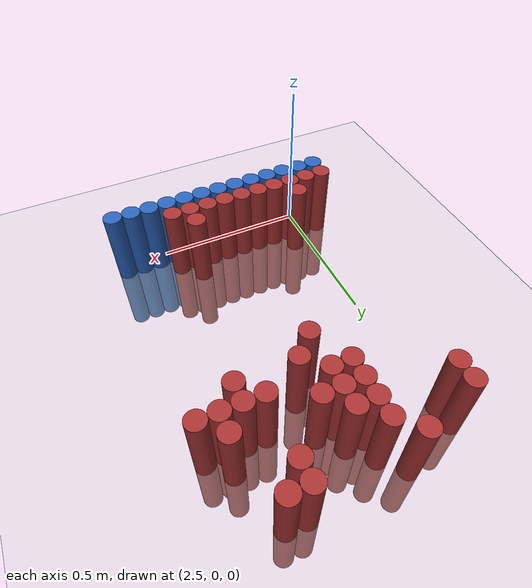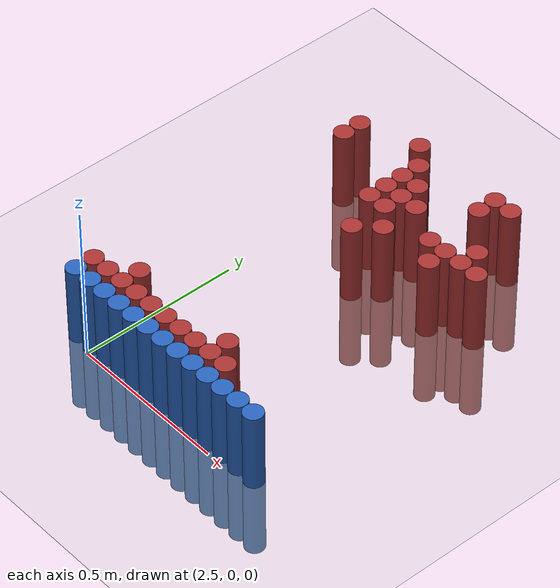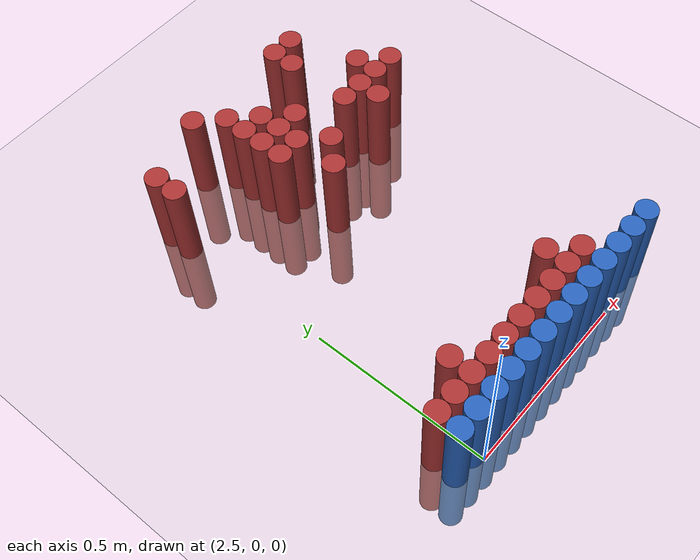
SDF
<sdf version="1.6">
 <world name="default">
  <model name="ground_plane">
   <static>1</static>
   <link name="link">
    <collision name="collision">
     <geometry><plane><normal>0 0 1</normal><size>100 100</size></plane></geometry>
     <surface><friction><ode><mu>100</mu><mu2>50</mu2></ode></friction></surface>
    </collision>
    <visual name="visual">
     <cast_shadows>0</cast_shadows>
     <geometry><plane><normal>0 0 1</normal><size>100 100</size></plane></geometry>
     <material>
      <script><uri>file://media/materials/scripts/gazebo.material</uri><name>Gazebo/Grey</name></script>
     </material>
    </visual>
   </link>
  </model>
  <model name="unit_cylinder_213">
   <static>1</static>
   <pose>2.670000 1.050000 0.000000 0.000000 0.000000 0.000000</pose>
   <link name="link">
    <inertial>
     <mass>1</mass>
     <inertia><ixx>0.145833</ixx><ixy>0</ixy><ixz>0</ixz><iyy>0.145833</iyy><iyz>0</iyz><izz>0.125</izz></inertia>
    </inertial>
    <collision name="collision">
     <geometry><cylinder><radius>0.030000</radius><length>0.5</length></cylinder></geometry>
    </collision>
    <visual name="visual">
     <geometry><cylinder><radius>0.030000</radius><length>0.5</length></cylinder></geometry>
     <material>
      <ambient>0.648000 0.192000 0.192000 1</ambient>
      <diffuse>0.648000 0.192000 0.192000 1</diffuse>
     </material>
     <material>
      <script><name>Gazebo/Grey</name><uri>file://media/materials/scripts/gazebo.material</uri></script>
     </material>
    </visual>
   </link>
  </model>
  <model name="unit_cylinder_214">
   <static>1</static>
   <pose>2.970000 1.050000 0.000000 0.000000 0.000000 0.000000</pose>
   <link name="link">
    <inertial>
     <mass>1</mass>
     <inertia><ixx>0.145833</ixx><ixy>0</ixy><ixz>0</ixz><iyy>0.145833</iyy><iyz>0</iyz><izz>0.125</izz></inertia>
    </inertial>
    <collision name="collision">
     <geometry><cylinder><radius>0.030000</radius><length>0.5</length></cylinder></geometry>
    </collision>
    <visual name="visual">
     <geometry><cylinder><radius>0.030000</radius><length>0.5</length></cylinder></geometry>
     <material>
      <ambient>0.648000 0.192000 0.192000 1</ambient>
      <diffuse>0.648000 0.192000 0.192000 1</diffuse>
     </material>
     <material>
      <script><name>Gazebo/Grey</name><uri>file://media/materials/scripts/gazebo.material</uri></script>
     </material>
    </visual>
   </link>
  </model>
  <model name="unit_cylinder_215">
   <static>1</static>
   <pose>3.030000 1.050000 0.000000 0.000000 0.000000 0.000000</pose>
   <link name="link">
    <inertial>
     <mass>1</mass>
     <inertia><ixx>0.145833</ixx><ixy>0</ixy><ixz>0</ixz><iyy>0.145833</iyy><iyz>0</iyz><izz>0.125</izz></inertia>
    </inertial>
    <collision name="collision">
     <geometry><cylinder><radius>0.030000</radius><length>0.5</length></cylinder></geometry>
    </collision>
    <visual name="visual">
     <geometry><cylinder><radius>0.030000</radius><length>0.5</length></cylinder></geometry>
     <material>
      <ambient>0.648000 0.192000 0.192000 1</ambient>
      <diffuse>0.648000 0.192000 0.192000 1</diffuse>
     </material>
     <material>
      <script><name>Gazebo/Grey</name><uri>file://media/materials/scripts/gazebo.material</uri></script>
     </material>
    </visual>
   </link>
  </model>
  <model name="unit_cylinder_224">
   <static>1</static>
   <pose>2.490000 0.990000 0.000000 0.000000 0.000000 0.000000</pose>
   <link name="link">
    <inertial>
     <mass>1</mass>
     <inertia><ixx>0.145833</ixx><ixy>0</ixy><ixz>0</ixz><iyy>0.145833</iyy><iyz>0</iyz><izz>0.125</izz></inertia>
    </inertial>
    <collision name="collision">
     <geometry><cylinder><radius>0.030000</radius><length>0.5</length></cylinder></geometry>
    </collision>
    <visual name="visual">
     <geometry><cylinder><radius>0.030000</radius><length>0.5</length></cylinder></geometry>
     <material>
      <ambient>0.648000 0.192000 0.192000 1</ambient>
      <diffuse>0.648000 0.192000 0.192000 1</diffuse>
     </material>
     <material>
      <script><name>Gazebo/Grey</name><uri>file://media/materials/scripts/gazebo.material</uri></script>
     </material>
    </visual>
   </link>
  </model>
  <model name="unit_cylinder_225">
   <static>1</static>
   <pose>2.730000 0.990000 0.000000 0.000000 0.000000 0.000000</pose>
   <link name="link">
    <inertial>
     <mass>1</mass>
     <inertia><ixx>0.145833</ixx><ixy>0</ixy><ixz>0</ixz><iyy>0.145833</iyy><iyz>0</iyz><izz>0.125</izz></inertia>
    </inertial>
    <collision name="collision">
     <geometry><cylinder><radius>0.030000</radius><length>0.5</length></cylinder></geometry>
    </collision>
    <visual name="visual">
     <geometry><cylinder><radius>0.030000</radius><length>0.5</length></cylinder></geometry>
     <material>
      <ambient>0.648000 0.192000 0.192000 1</ambient>
      <diffuse>0.648000 0.192000 0.192000 1</diffuse>
     </material>
     <material>
      <script><name>Gazebo/Grey</name><uri>file://media/materials/scripts/gazebo.material</uri></script>
     </material>
    </visual>
   </link>
  </model>
  <model name="unit_cylinder_226">
   <static>1</static>
   <pose>2.970000 0.990000 0.000000 0.000000 0.000000 0.000000</pose>
   <link name="link">
    <inertial>
     <mass>1</mass>
     <inertia><ixx>0.145833</ixx><ixy>0</ixy><ixz>0</ixz><iyy>0.145833</iyy><iyz>0</iyz><izz>0.125</izz></inertia>
    </inertial>
    <collision name="collision">
     <geometry><cylinder><radius>0.030000</radius><length>0.5</length></cylinder></geometry>
    </collision>
    <visual name="visual">
     <geometry><cylinder><radius>0.030000</radius><length>0.5</length></cylinder></geometry>
     <material>
      <ambient>0.648000 0.192000 0.192000 1</ambient>
      <diffuse>0.648000 0.192000 0.192000 1</diffuse>
     </material>
     <material>
      <script><name>Gazebo/Grey</name><uri>file://media/materials/scripts/gazebo.material</uri></script>
     </material>
    </visual>
   </link>
  </model>
  <model name="unit_cylinder_232">
   <static>1</static>
   <pose>2.490000 0.930000 0.000000 0.000000 0.000000 0.000000</pose>
   <link name="link">
    <inertial>
     <mass>1</mass>
     <inertia><ixx>0.145833</ixx><ixy>0</ixy><ixz>0</ixz><iyy>0.145833</iyy><iyz>0</iyz><izz>0.125</izz></inertia>
    </inertial>
    <collision name="collision">
     <geometry><cylinder><radius>0.030000</radius><length>0.5</length></cylinder></geometry>
    </collision>
    <visual name="visual">
     <geometry><cylinder><radius>0.030000</radius><length>0.5</length></cylinder></geometry>
     <material>
      <ambient>0.648000 0.192000 0.192000 1</ambient>
      <diffuse>0.648000 0.192000 0.192000 1</diffuse>
     </material>
     <material>
      <script><name>Gazebo/Grey</name><uri>file://media/materials/scripts/gazebo.material</uri></script>
     </material>
    </visual>
   </link>
  </model>
  <model name="unit_cylinder_233">
   <static>1</static>
   <pose>2.730000 0.930000 0.000000 0.000000 0.000000 0.000000</pose>
   <link name="link">
    <inertial>
     <mass>1</mass>
     <inertia><ixx>0.145833</ixx><ixy>0</ixy><ixz>0</ixz><iyy>0.145833</iyy><iyz>0</iyz><izz>0.125</izz></inertia>
    </inertial>
    <collision name="collision">
     <geometry><cylinder><radius>0.030000</radius><length>0.5</length></cylinder></geometry>
    </collision>
    <visual name="visual">
     <geometry><cylinder><radius>0.030000</radius><length>0.5</length></cylinder></geometry>
     <material>
      <ambient>0.648000 0.192000 0.192000 1</ambient>
      <diffuse>0.648000 0.192000 0.192000 1</diffuse>
     </material>
     <material>
      <script><name>Gazebo/Grey</name><uri>file://media/materials/scripts/gazebo.material</uri></script>
     </material>
    </visual>
   </link>
  </model>
  <model name="unit_cylinder_234">
   <static>1</static>
   <pose>2.790000 0.930000 0.000000 0.000000 0.000000 0.000000</pose>
   <link name="link">
    <inertial>
     <mass>1</mass>
     <inertia><ixx>0.145833</ixx><ixy>0</ixy><ixz>0</ixz><iyy>0.145833</iyy><iyz>0</iyz><izz>0.125</izz></inertia>
    </inertial>
    <collision name="collision">
     <geometry><cylinder><radius>0.030000</radius><length>0.5</length></cylinder></geometry>
    </collision>
    <visual name="visual">
     <geometry><cylinder><radius>0.030000</radius><length>0.5</length></cylinder></geometry>
     <material>
      <ambient>0.648000 0.192000 0.192000 1</ambient>
      <diffuse>0.648000 0.192000 0.192000 1</diffuse>
     </material>
     <material>
      <script><name>Gazebo/Grey</name><uri>file://media/materials/scripts/gazebo.material</uri></script>
     </material>
    </visual>
   </link>
  </model>
  <model name="unit_cylinder_238">
   <static>1</static>
   <pose>2.730000 0.870000 0.000000 0.000000 0.000000 0.000000</pose>
   <link name="link">
    <inertial>
     <mass>1</mass>
     <inertia><ixx>0.145833</ixx><ixy>0</ixy><ixz>0</ixz><iyy>0.145833</iyy><iyz>0</iyz><izz>0.125</izz></inertia>
    </inertial>
    <collision name="collision">
     <geometry><cylinder><radius>0.030000</radius><length>0.5</length></cylinder></geometry>
    </collision>
    <visual name="visual">
     <geometry><cylinder><radius>0.030000</radius><length>0.5</length></cylinder></geometry>
     <material>
      <ambient>0.648000 0.192000 0.192000 1</ambient>
      <diffuse>0.648000 0.192000 0.192000 1</diffuse>
     </material>
     <material>
      <script><name>Gazebo/Grey</name><uri>file://media/materials/scripts/gazebo.material</uri></script>
     </material>
    </visual>
   </link>
  </model>
  <model name="unit_cylinder_239">
   <static>1</static>
   <pose>2.790000 0.870000 0.000000 0.000000 0.000000 0.000000</pose>
   <link name="link">
    <inertial>
     <mass>1</mass>
     <inertia><ixx>0.145833</ixx><ixy>0</ixy><ixz>0</ixz><iyy>0.145833</iyy><iyz>0</iyz><izz>0.125</izz></inertia>
    </inertial>
    <collision name="collision">
     <geometry><cylinder><radius>0.030000</radius><length>0.5</length></cylinder></geometry>
    </collision>
    <visual name="visual">
     <geometry><cylinder><radius>0.030000</radius><length>0.5</length></cylinder></geometry>
     <material>
      <ambient>0.648000 0.192000 0.192000 1</ambient>
      <diffuse>0.648000 0.192000 0.192000 1</diffuse>
     </material>
     <material>
      <script><name>Gazebo/Grey</name><uri>file://media/materials/scripts/gazebo.material</uri></script>
     </material>
    </visual>
   </link>
  </model>
  <model name="unit_cylinder_240">
   <static>1</static>
   <pose>2.850000 0.870000 0.000000 0.000000 0.000000 0.000000</pose>
   <link name="link">
    <inertial>
     <mass>1</mass>
     <inertia><ixx>0.145833</ixx><ixy>0</ixy><ixz>0</ixz><iyy>0.145833</iyy><iyz>0</iyz><izz>0.125</izz></inertia>
    </inertial>
    <collision name="collision">
     <geometry><cylinder><radius>0.030000</radius><length>0.5</length></cylinder></geometry>
    </collision>
    <visual name="visual">
     <geometry><cylinder><radius>0.030000</radius><length>0.5</length></cylinder></geometry>
     <material>
      <ambient>0.648000 0.192000 0.192000 1</ambient>
      <diffuse>0.648000 0.192000 0.192000 1</diffuse>
     </material>
     <material>
      <script><name>Gazebo/Grey</name><uri>file://media/materials/scripts/gazebo.material</uri></script>
     </material>
    </visual>
   </link>
  </model>
  <model name="unit_cylinder_241">
   <static>1</static>
   <pose>3.090000 0.870000 0.000000 0.000000 0.000000 0.000000</pose>
   <link name="link">
    <inertial>
     <mass>1</mass>
     <inertia><ixx>0.145833</ixx><ixy>0</ixy><ixz>0</ixz><iyy>0.145833</iyy><iyz>0</iyz><izz>0.125</izz></inertia>
    </inertial>
    <collision name="collision">
     <geometry><cylinder><radius>0.030000</radius><length>0.5</length></cylinder></geometry>
    </collision>
    <visual name="visual">
     <geometry><cylinder><radius>0.030000</radius><length>0.5</length></cylinder></geometry>
     <material>
      <ambient>0.648000 0.192000 0.192000 1</ambient>
      <diffuse>0.648000 0.192000 0.192000 1</diffuse>
     </material>
     <material>
      <script><name>Gazebo/Grey</name><uri>file://media/materials/scripts/gazebo.material</uri></script>
     </material>
    </visual>
   </link>
  </model>
  <model name="unit_cylinder_244">
   <static>1</static>
   <pose>2.730000 0.810000 0.000000 0.000000 0.000000 0.000000</pose>
   <link name="link">
    <inertial>
     <mass>1</mass>
     <inertia><ixx>0.145833</ixx><ixy>0</ixy><ixz>0</ixz><iyy>0.145833</iyy><iyz>0</iyz><izz>0.125</izz></inertia>
    </inertial>
    <collision name="collision">
     <geometry><cylinder><radius>0.030000</radius><length>0.5</length></cylinder></geometry>
    </collision>
    <visual name="visual">
     <geometry><cylinder><radius>0.030000</radius><length>0.5</length></cylinder></geometry>
     <material>
      <ambient>0.648000 0.192000 0.192000 1</ambient>
      <diffuse>0.648000 0.192000 0.192000 1</diffuse>
     </material>
     <material>
      <script><name>Gazebo/Grey</name><uri>file://media/materials/scripts/gazebo.material</uri></script>
     </material>
    </visual>
   </link>
  </model>
  <model name="unit_cylinder_245">
   <static>1</static>
   <pose>2.790000 0.810000 0.000000 0.000000 0.000000 0.000000</pose>
   <link name="link">
    <inertial>
     <mass>1</mass>
     <inertia><ixx>0.145833</ixx><ixy>0</ixy><ixz>0</ixz><iyy>0.145833</iyy><iyz>0</iyz><izz>0.125</izz></inertia>
    </inertial>
    <collision name="collision">
     <geometry><cylinder><radius>0.030000</radius><length>0.5</length></cylinder></geometry>
    </collision>
    <visual name="visual">
     <geometry><cylinder><radius>0.030000</radius><length>0.5</length></cylinder></geometry>
     <material>
      <ambient>0.648000 0.192000 0.192000 1</ambient>
      <diffuse>0.648000 0.192000 0.192000 1</diffuse>
     </material>
     <material>
      <script><name>Gazebo/Grey</name><uri>file://media/materials/scripts/gazebo.material</uri></script>
     </material>
    </visual>
   </link>
  </model>
  <model name="unit_cylinder_246">
   <static>1</static>
   <pose>2.970000 0.810000 0.000000 0.000000 0.000000 0.000000</pose>
   <link name="link">
    <inertial>
     <mass>1</mass>
     <inertia><ixx>0.145833</ixx><ixy>0</ixy><ixz>0</ixz><iyy>0.145833</iyy><iyz>0</iyz><izz>0.125</izz></inertia>
    </inertial>
    <collision name="collision">
     <geometry><cylinder><radius>0.030000</radius><length>0.5</length></cylinder></geometry>
    </collision>
    <visual name="visual">
     <geometry><cylinder><radius>0.030000</radius><length>0.5</length></cylinder></geometry>
     <material>
      <ambient>0.648000 0.192000 0.192000 1</ambient>
      <diffuse>0.648000 0.192000 0.192000 1</diffuse>
     </material>
     <material>
      <script><name>Gazebo/Grey</name><uri>file://media/materials/scripts/gazebo.material</uri></script>
     </material>
    </visual>
   </link>
  </model>
  <model name="unit_cylinder_247">
   <static>1</static>
   <pose>3.030000 0.810000 0.000000 0.000000 0.000000 0.000000</pose>
   <link name="link">
    <inertial>
     <mass>1</mass>
     <inertia><ixx>0.145833</ixx><ixy>0</ixy><ixz>0</ixz><iyy>0.145833</iyy><iyz>0</iyz><izz>0.125</izz></inertia>
    </inertial>
    <collision name="collision">
     <geometry><cylinder><radius>0.030000</radius><length>0.5</length></cylinder></geometry>
    </collision>
    <visual name="visual">
     <geometry><cylinder><radius>0.030000</radius><length>0.5</length></cylinder></geometry>
     <material>
      <ambient>0.648000 0.192000 0.192000 1</ambient>
      <diffuse>0.648000 0.192000 0.192000 1</diffuse>
     </material>
     <material>
      <script><name>Gazebo/Grey</name><uri>file://media/materials/scripts/gazebo.material</uri></script>
     </material>
    </visual>
   </link>
  </model>
  <model name="unit_cylinder_248">
   <static>1</static>
   <pose>3.090000 0.810000 0.000000 0.000000 0.000000 0.000000</pose>
   <link name="link">
    <inertial>
     <mass>1</mass>
     <inertia><ixx>0.145833</ixx><ixy>0</ixy><ixz>0</ixz><iyy>0.145833</iyy><iyz>0</iyz><izz>0.125</izz></inertia>
    </inertial>
    <collision name="collision">
     <geometry><cylinder><radius>0.030000</radius><length>0.5</length></cylinder></geometry>
    </collision>
    <visual name="visual">
     <geometry><cylinder><radius>0.030000</radius><length>0.5</length></cylinder></geometry>
     <material>
      <ambient>0.648000 0.192000 0.192000 1</ambient>
      <diffuse>0.648000 0.192000 0.192000 1</diffuse>
     </material>
     <material>
      <script><name>Gazebo/Grey</name><uri>file://media/materials/scripts/gazebo.material</uri></script>
     </material>
    </visual>
   </link>
  </model>
  <model name="unit_cylinder_249">
   <static>1</static>
   <pose>3.150000 0.810000 0.000000 0.000000 0.000000 0.000000</pose>
   <link name="link">
    <inertial>
     <mass>1</mass>
     <inertia><ixx>0.145833</ixx><ixy>0</ixy><ixz>0</ixz><iyy>0.145833</iyy><iyz>0</iyz><izz>0.125</izz></inertia>
    </inertial>
    <collision name="collision">
     <geometry><cylinder><radius>0.030000</radius><length>0.5</length></cylinder></geometry>
    </collision>
    <visual name="visual">
     <geometry><cylinder><radius>0.030000</radius><length>0.5</length></cylinder></geometry>
     <material>
      <ambient>0.648000 0.192000 0.192000 1</ambient>
      <diffuse>0.648000 0.192000 0.192000 1</diffuse>
     </material>
     <material>
      <script><name>Gazebo/Grey</name><uri>file://media/materials/scripts/gazebo.material</uri></script>
     </material>
    </visual>
   </link>
  </model>
  <model name="unit_cylinder_250">
   <static>1</static>
   <pose>2.850000 0.750000 0.000000 0.000000 0.000000 0.000000</pose>
   <link name="link">
    <inertial>
     <mass>1</mass>
     <inertia><ixx>0.145833</ixx><ixy>0</ixy><ixz>0</ixz><iyy>0.145833</iyy><iyz>0</iyz><izz>0.125</izz></inertia>
    </inertial>
    <collision name="collision">
     <geometry><cylinder><radius>0.030000</radius><length>0.5</length></cylinder></geometry>
    </collision>
    <visual name="visual">
     <geometry><cylinder><radius>0.030000</radius><length>0.5</length></cylinder></geometry>
     <material>
      <ambient>0.648000 0.192000 0.192000 1</ambient>
      <diffuse>0.648000 0.192000 0.192000 1</diffuse>
     </material>
     <material>
      <script><name>Gazebo/Grey</name><uri>file://media/materials/scripts/gazebo.material</uri></script>
     </material>
    </visual>
   </link>
  </model>
  <model name="unit_cylinder_251">
   <static>1</static>
   <pose>3.030000 0.750000 0.000000 0.000000 0.000000 0.000000</pose>
   <link name="link">
    <inertial>
     <mass>1</mass>
     <inertia><ixx>0.145833</ixx><ixy>0</ixy><ixz>0</ixz><iyy>0.145833</iyy><iyz>0</iyz><izz>0.125</izz></inertia>
    </inertial>
    <collision name="collision">
     <geometry><cylinder><radius>0.030000</radius><length>0.5</length></cylinder></geometry>
    </collision>
    <visual name="visual">
     <geometry><cylinder><radius>0.030000</radius><length>0.5</length></cylinder></geometry>
     <material>
      <ambient>0.648000 0.192000 0.192000 1</ambient>
      <diffuse>0.648000 0.192000 0.192000 1</diffuse>
     </material>
     <material>
      <script><name>Gazebo/Grey</name><uri>file://media/materials/scripts/gazebo.material</uri></script>
     </material>
    </visual>
   </link>
  </model>
  <model name="unit_cylinder_252">
   <static>1</static>
   <pose>2.790000 0.690000 0.000000 0.000000 0.000000 0.000000</pose>
   <link name="link">
    <inertial>
     <mass>1</mass>
     <inertia><ixx>0.145833</ixx><ixy>0</ixy><ixz>0</ixz><iyy>0.145833</iyy><iyz>0</iyz><izz>0.125</izz></inertia>
    </inertial>
    <collision name="collision">
     <geometry><cylinder><radius>0.030000</radius><length>0.5</length></cylinder></geometry>
    </collision>
    <visual name="visual">
     <geometry><cylinder><radius>0.030000</radius><length>0.5</length></cylinder></geometry>
     <material>
      <ambient>0.648000 0.192000 0.192000 1</ambient>
      <diffuse>0.648000 0.192000 0.192000 1</diffuse>
     </material>
     <material>
      <script><name>Gazebo/Grey</name><uri>file://media/materials/scripts/gazebo.material</uri></script>
     </material>
    </visual>
   </link>
  </model>
  <model name="unit_cylinder_280">
   <static>1</static>
   <pose>2.550000 0.150000 0.000000 0.000000 0.000000 0.000000</pose>
   <link name="link">
    <inertial>
     <mass>1</mass>
     <inertia><ixx>0.145833</ixx><ixy>0</ixy><ixz>0</ixz><iyy>0.145833</iyy><iyz>0</iyz><izz>0.125</izz></inertia>
    </inertial>
    <collision name="collision">
     <geometry><cylinder><radius>0.030000</radius><length>0.5</length></cylinder></geometry>
    </collision>
    <visual name="visual">
     <geometry><cylinder><radius>0.030000</radius><length>0.5</length></cylinder></geometry>
     <material>
      <ambient>0.648000 0.192000 0.192000 1</ambient>
      <diffuse>0.648000 0.192000 0.192000 1</diffuse>
     </material>
     <material>
      <script><name>Gazebo/Grey</name><uri>file://media/materials/scripts/gazebo.material</uri></script>
     </material>
    </visual>
   </link>
  </model>
  <model name="unit_cylinder_281">
   <static>1</static>
   <pose>2.910000 0.150000 0.000000 0.000000 0.000000 0.000000</pose>
   <link name="link">
    <inertial>
     <mass>1</mass>
     <inertia><ixx>0.145833</ixx><ixy>0</ixy><ixz>0</ixz><iyy>0.145833</iyy><iyz>0</iyz><izz>0.125</izz></inertia>
    </inertial>
    <collision name="collision">
     <geometry><cylinder><radius>0.030000</radius><length>0.5</length></cylinder></geometry>
    </collision>
    <visual name="visual">
     <geometry><cylinder><radius>0.030000</radius><length>0.5</length></cylinder></geometry>
     <material>
      <ambient>0.648000 0.192000 0.192000 1</ambient>
      <diffuse>0.648000 0.192000 0.192000 1</diffuse>
     </material>
     <material>
      <script><name>Gazebo/Grey</name><uri>file://media/materials/scripts/gazebo.material</uri></script>
     </material>
    </visual>
   </link>
  </model>
  <model name="unit_cylinder_286">
   <static>1</static>
   <pose>2.430000 0.090000 0.000000 0.000000 0.000000 0.000000</pose>
   <link name="link">
    <inertial>
     <mass>1</mass>
     <inertia><ixx>0.145833</ixx><ixy>0</ixy><ixz>0</ixz><iyy>0.145833</iyy><iyz>0</iyz><izz>0.125</izz></inertia>
    </inertial>
    <collision name="collision">
     <geometry><cylinder><radius>0.030000</radius><length>0.5</length></cylinder></geometry>
    </collision>
    <visual name="visual">
     <geometry><cylinder><radius>0.030000</radius><length>0.5</length></cylinder></geometry>
     <material>
      <ambient>0.648000 0.192000 0.192000 1</ambient>
      <diffuse>0.648000 0.192000 0.192000 1</diffuse>
     </material>
     <material>
      <script><name>Gazebo/Grey</name><uri>file://media/materials/scripts/gazebo.material</uri></script>
     </material>
    </visual>
   </link>
  </model>
  <model name="unit_cylinder_287">
   <static>1</static>
   <pose>2.490000 0.090000 0.000000 0.000000 0.000000 0.000000</pose>
   <link name="link">
    <inertial>
     <mass>1</mass>
     <inertia><ixx>0.145833</ixx><ixy>0</ixy><ixz>0</ixz><iyy>0.145833</iyy><iyz>0</iyz><izz>0.125</izz></inertia>
    </inertial>
    <collision name="collision">
     <geometry><cylinder><radius>0.030000</radius><length>0.5</length></cylinder></geometry>
    </collision>
    <visual name="visual">
     <geometry><cylinder><radius>0.030000</radius><length>0.5</length></cylinder></geometry>
     <material>
      <ambient>0.648000 0.192000 0.192000 1</ambient>
      <diffuse>0.648000 0.192000 0.192000 1</diffuse>
     </material>
     <material>
      <script><name>Gazebo/Grey</name><uri>file://media/materials/scripts/gazebo.material</uri></script>
     </material>
    </visual>
   </link>
  </model>
  <model name="unit_cylinder_288">
   <static>1</static>
   <pose>2.550000 0.090000 0.000000 0.000000 0.000000 0.000000</pose>
   <link name="link">
    <inertial>
     <mass>1</mass>
     <inertia><ixx>0.145833</ixx><ixy>0</ixy><ixz>0</ixz><iyy>0.145833</iyy><iyz>0</iyz><izz>0.125</izz></inertia>
    </inertial>
    <collision name="collision">
     <geometry><cylinder><radius>0.030000</radius><length>0.5</length></cylinder></geometry>
    </collision>
    <visual name="visual">
     <geometry><cylinder><radius>0.030000</radius><length>0.5</length></cylinder></geometry>
     <material>
      <ambient>0.648000 0.192000 0.192000 1</ambient>
      <diffuse>0.648000 0.192000 0.192000 1</diffuse>
     </material>
     <material>
      <script><name>Gazebo/Grey</name><uri>file://media/materials/scripts/gazebo.material</uri></script>
     </material>
    </visual>
   </link>
  </model>
  <model name="unit_cylinder_289">
   <static>1</static>
   <pose>2.610000 0.090000 0.000000 0.000000 0.000000 0.000000</pose>
   <link name="link">
    <inertial>
     <mass>1</mass>
     <inertia><ixx>0.145833</ixx><ixy>0</ixy><ixz>0</ixz><iyy>0.145833</iyy><iyz>0</iyz><izz>0.125</izz></inertia>
    </inertial>
    <collision name="collision">
     <geometry><cylinder><radius>0.030000</radius><length>0.5</length></cylinder></geometry>
    </collision>
    <visual name="visual">
     <geometry><cylinder><radius>0.030000</radius><length>0.5</length></cylinder></geometry>
     <material>
      <ambient>0.648000 0.192000 0.192000 1</ambient>
      <diffuse>0.648000 0.192000 0.192000 1</diffuse>
     </material>
     <material>
      <script><name>Gazebo/Grey</name><uri>file://media/materials/scripts/gazebo.material</uri></script>
     </material>
    </visual>
   </link>
  </model>
  <model name="unit_cylinder_290">
   <static>1</static>
   <pose>2.670000 0.090000 0.000000 0.000000 0.000000 0.000000</pose>
   <link name="link">
    <inertial>
     <mass>1</mass>
     <inertia><ixx>0.145833</ixx><ixy>0</ixy><ixz>0</ixz><iyy>0.145833</iyy><iyz>0</iyz><izz>0.125</izz></inertia>
    </inertial>
    <collision name="collision">
     <geometry><cylinder><radius>0.030000</radius><length>0.5</length></cylinder></geometry>
    </collision>
    <visual name="visual">
     <geometry><cylinder><radius>0.030000</radius><length>0.5</length></cylinder></geometry>
     <material>
      <ambient>0.648000 0.192000 0.192000 1</ambient>
      <diffuse>0.648000 0.192000 0.192000 1</diffuse>
     </material>
     <material>
      <script><name>Gazebo/Grey</name><uri>file://media/materials/scripts/gazebo.material</uri></script>
     </material>
    </visual>
   </link>
  </model>
  <model name="unit_cylinder_291">
   <static>1</static>
   <pose>2.730000 0.090000 0.000000 0.000000 0.000000 0.000000</pose>
   <link name="link">
    <inertial>
     <mass>1</mass>
     <inertia><ixx>0.145833</ixx><ixy>0</ixy><ixz>0</ixz><iyy>0.145833</iyy><iyz>0</iyz><izz>0.125</izz></inertia>
    </inertial>
    <collision name="collision">
     <geometry><cylinder><radius>0.030000</radius><length>0.5</length></cylinder></geometry>
    </collision>
    <visual name="visual">
     <geometry><cylinder><radius>0.030000</radius><length>0.5</length></cylinder></geometry>
     <material>
      <ambient>0.648000 0.192000 0.192000 1</ambient>
      <diffuse>0.648000 0.192000 0.192000 1</diffuse>
     </material>
     <material>
      <script><name>Gazebo/Grey</name><uri>file://media/materials/scripts/gazebo.material</uri></script>
     </material>
    </visual>
   </link>
  </model>
  <model name="unit_cylinder_292">
   <static>1</static>
   <pose>2.790000 0.090000 0.000000 0.000000 0.000000 0.000000</pose>
   <link name="link">
    <inertial>
     <mass>1</mass>
     <inertia><ixx>0.145833</ixx><ixy>0</ixy><ixz>0</ixz><iyy>0.145833</iyy><iyz>0</iyz><izz>0.125</izz></inertia>
    </inertial>
    <collision name="collision">
     <geometry><cylinder><radius>0.030000</radius><length>0.5</length></cylinder></geometry>
    </collision>
    <visual name="visual">
     <geometry><cylinder><radius>0.030000</radius><length>0.5</length></cylinder></geometry>
     <material>
      <ambient>0.648000 0.192000 0.192000 1</ambient>
      <diffuse>0.648000 0.192000 0.192000 1</diffuse>
     </material>
     <material>
      <script><name>Gazebo/Grey</name><uri>file://media/materials/scripts/gazebo.material</uri></script>
     </material>
    </visual>
   </link>
  </model>
  <model name="unit_cylinder_293">
   <static>1</static>
   <pose>2.850000 0.090000 0.000000 0.000000 0.000000 0.000000</pose>
   <link name="link">
    <inertial>
     <mass>1</mass>
     <inertia><ixx>0.145833</ixx><ixy>0</ixy><ixz>0</ixz><iyy>0.145833</iyy><iyz>0</iyz><izz>0.125</izz></inertia>
    </inertial>
    <collision name="collision">
     <geometry><cylinder><radius>0.030000</radius><length>0.5</length></cylinder></geometry>
    </collision>
    <visual name="visual">
     <geometry><cylinder><radius>0.030000</radius><length>0.5</length></cylinder></geometry>
     <material>
      <ambient>0.648000 0.192000 0.192000 1</ambient>
      <diffuse>0.648000 0.192000 0.192000 1</diffuse>
     </material>
     <material>
      <script><name>Gazebo/Grey</name><uri>file://media/materials/scripts/gazebo.material</uri></script>
     </material>
    </visual>
   </link>
  </model>
  <model name="unit_cylinder_294">
   <static>1</static>
   <pose>2.910000 0.090000 0.000000 0.000000 0.000000 0.000000</pose>
   <link name="link">
    <inertial>
     <mass>1</mass>
     <inertia><ixx>0.145833</ixx><ixy>0</ixy><ixz>0</ixz><iyy>0.145833</iyy><iyz>0</iyz><izz>0.125</izz></inertia>
    </inertial>
    <collision name="collision">
     <geometry><cylinder><radius>0.030000</radius><length>0.5</length></cylinder></geometry>
    </collision>
    <visual name="visual">
     <geometry><cylinder><radius>0.030000</radius><length>0.5</length></cylinder></geometry>
     <material>
      <ambient>0.648000 0.192000 0.192000 1</ambient>
      <diffuse>0.648000 0.192000 0.192000 1</diffuse>
     </material>
     <material>
      <script><name>Gazebo/Grey</name><uri>file://media/materials/scripts/gazebo.material</uri></script>
     </material>
    </visual>
   </link>
  </model>
  <model name="unit_cylinder_295">
   <static>1</static>
   <pose>2.970000 0.090000 0.000000 0.000000 0.000000 0.000000</pose>
   <link name="link">
    <inertial>
     <mass>1</mass>
     <inertia><ixx>0.145833</ixx><ixy>0</ixy><ixz>0</ixz><iyy>0.145833</iyy><iyz>0</iyz><izz>0.125</izz></inertia>
    </inertial>
    <collision name="collision">
     <geometry><cylinder><radius>0.030000</radius><length>0.5</length></cylinder></geometry>
    </collision>
    <visual name="visual">
     <geometry><cylinder><radius>0.030000</radius><length>0.5</length></cylinder></geometry>
     <material>
      <ambient>0.648000 0.192000 0.192000 1</ambient>
      <diffuse>0.648000 0.192000 0.192000 1</diffuse>
     </material>
     <material>
      <script><name>Gazebo/Grey</name><uri>file://media/materials/scripts/gazebo.material</uri></script>
     </material>
    </visual>
   </link>
  </model>
  <model name="unit_cylinder_305">
   <static>1</static>
   <pose>2.430000 0.030000 0.000000 0.000000 0.000000 0.000000</pose>
   <link name="link">
    <inertial>
     <mass>1</mass>
     <inertia><ixx>0.145833</ixx><ixy>0</ixy><ixz>0</ixz><iyy>0.145833</iyy><iyz>0</iyz><izz>0.125</izz></inertia>
    </inertial>
    <collision name="collision">
     <geometry><cylinder><radius>0.030000</radius><length>0.5</length></cylinder></geometry>
    </collision>
    <visual name="visual">
     <geometry><cylinder><radius>0.030000</radius><length>0.5</length></cylinder></geometry>
     <material>
      <ambient>0.152000 0.379000 0.720000 1</ambient>
      <diffuse>0.152000 0.379000 0.720000 1</diffuse>
     </material>
     <material>
      <script><name>Gazebo/Grey</name><uri>file://media/materials/scripts/gazebo.material</uri></script>
     </material>
    </visual>
   </link>
  </model>
  <model name="unit_cylinder_306">
   <static>1</static>
   <pose>2.490000 0.030000 0.000000 0.000000 0.000000 0.000000</pose>
   <link name="link">
    <inertial>
     <mass>1</mass>
     <inertia><ixx>0.145833</ixx><ixy>0</ixy><ixz>0</ixz><iyy>0.145833</iyy><iyz>0</iyz><izz>0.125</izz></inertia>
    </inertial>
    <collision name="collision">
     <geometry><cylinder><radius>0.030000</radius><length>0.5</length></cylinder></geometry>
    </collision>
    <visual name="visual">
     <geometry><cylinder><radius>0.030000</radius><length>0.5</length></cylinder></geometry>
     <material>
      <ambient>0.152000 0.379000 0.720000 1</ambient>
      <diffuse>0.152000 0.379000 0.720000 1</diffuse>
     </material>
     <material>
      <script><name>Gazebo/Grey</name><uri>file://media/materials/scripts/gazebo.material</uri></script>
     </material>
    </visual>
   </link>
  </model>
  <model name="unit_cylinder_307">
   <static>1</static>
   <pose>2.550000 0.030000 0.000000 0.000000 0.000000 0.000000</pose>
   <link name="link">
    <inertial>
     <mass>1</mass>
     <inertia><ixx>0.145833</ixx><ixy>0</ixy><ixz>0</ixz><iyy>0.145833</iyy><iyz>0</iyz><izz>0.125</izz></inertia>
    </inertial>
    <collision name="collision">
     <geometry><cylinder><radius>0.030000</radius><length>0.5</length></cylinder></geometry>
    </collision>
    <visual name="visual">
     <geometry><cylinder><radius>0.030000</radius><length>0.5</length></cylinder></geometry>
     <material>
      <ambient>0.152000 0.379000 0.720000 1</ambient>
      <diffuse>0.152000 0.379000 0.720000 1</diffuse>
     </material>
     <material>
      <script><name>Gazebo/Grey</name><uri>file://media/materials/scripts/gazebo.material</uri></script>
     </material>
    </visual>
   </link>
  </model>
  <model name="unit_cylinder_308">
   <static>1</static>
   <pose>2.610000 0.030000 0.000000 0.000000 0.000000 0.000000</pose>
   <link name="link">
    <inertial>
     <mass>1</mass>
     <inertia><ixx>0.145833</ixx><ixy>0</ixy><ixz>0</ixz><iyy>0.145833</iyy><iyz>0</iyz><izz>0.125</izz></inertia>
    </inertial>
    <collision name="collision">
     <geometry><cylinder><radius>0.030000</radius><length>0.5</length></cylinder></geometry>
    </collision>
    <visual name="visual">
     <geometry><cylinder><radius>0.030000</radius><length>0.5</length></cylinder></geometry>
     <material>
      <ambient>0.152000 0.379000 0.720000 1</ambient>
      <diffuse>0.152000 0.379000 0.720000 1</diffuse>
     </material>
     <material>
      <script><name>Gazebo/Grey</name><uri>file://media/materials/scripts/gazebo.material</uri></script>
     </material>
    </visual>
   </link>
  </model>
  <model name="unit_cylinder_309">
   <static>1</static>
   <pose>2.670000 0.030000 0.000000 0.000000 0.000000 0.000000</pose>
   <link name="link">
    <inertial>
     <mass>1</mass>
     <inertia><ixx>0.145833</ixx><ixy>0</ixy><ixz>0</ixz><iyy>0.145833</iyy><iyz>0</iyz><izz>0.125</izz></inertia>
    </inertial>
    <collision name="collision">
     <geometry><cylinder><radius>0.030000</radius><length>0.5</length></cylinder></geometry>
    </collision>
    <visual name="visual">
     <geometry><cylinder><radius>0.030000</radius><length>0.5</length></cylinder></geometry>
     <material>
      <ambient>0.152000 0.379000 0.720000 1</ambient>
      <diffuse>0.152000 0.379000 0.720000 1</diffuse>
     </material>
     <material>
      <script><name>Gazebo/Grey</name><uri>file://media/materials/scripts/gazebo.material</uri></script>
     </material>
    </visual>
   </link>
  </model>
  <model name="unit_cylinder_310">
   <static>1</static>
   <pose>2.730000 0.030000 0.000000 0.000000 0.000000 0.000000</pose>
   <link name="link">
    <inertial>
     <mass>1</mass>
     <inertia><ixx>0.145833</ixx><ixy>0</ixy><ixz>0</ixz><iyy>0.145833</iyy><iyz>0</iyz><izz>0.125</izz></inertia>
    </inertial>
    <collision name="collision">
     <geometry><cylinder><radius>0.030000</radius><length>0.5</length></cylinder></geometry>
    </collision>
    <visual name="visual">
     <geometry><cylinder><radius>0.030000</radius><length>0.5</length></cylinder></geometry>
     <material>
      <ambient>0.152000 0.379000 0.720000 1</ambient>
      <diffuse>0.152000 0.379000 0.720000 1</diffuse>
     </material>
     <material>
      <script><name>Gazebo/Grey</name><uri>file://media/materials/scripts/gazebo.material</uri></script>
     </material>
    </visual>
   </link>
  </model>
  <model name="unit_cylinder_311">
   <static>1</static>
   <pose>2.790000 0.030000 0.000000 0.000000 0.000000 0.000000</pose>
   <link name="link">
    <inertial>
     <mass>1</mass>
     <inertia><ixx>0.145833</ixx><ixy>0</ixy><ixz>0</ixz><iyy>0.145833</iyy><iyz>0</iyz><izz>0.125</izz></inertia>
    </inertial>
    <collision name="collision">
     <geometry><cylinder><radius>0.030000</radius><length>0.5</length></cylinder></geometry>
    </collision>
    <visual name="visual">
     <geometry><cylinder><radius>0.030000</radius><length>0.5</length></cylinder></geometry>
     <material>
      <ambient>0.152000 0.379000 0.720000 1</ambient>
      <diffuse>0.152000 0.379000 0.720000 1</diffuse>
     </material>
     <material>
      <script><name>Gazebo/Grey</name><uri>file://media/materials/scripts/gazebo.material</uri></script>
     </material>
    </visual>
   </link>
  </model>
  <model name="unit_cylinder_312">
   <static>1</static>
   <pose>2.850000 0.030000 0.000000 0.000000 0.000000 0.000000</pose>
   <link name="link">
    <inertial>
     <mass>1</mass>
     <inertia><ixx>0.145833</ixx><ixy>0</ixy><ixz>0</ixz><iyy>0.145833</iyy><iyz>0</iyz><izz>0.125</izz></inertia>
    </inertial>
    <collision name="collision">
     <geometry><cylinder><radius>0.030000</radius><length>0.5</length></cylinder></geometry>
    </collision>
    <visual name="visual">
     <geometry><cylinder><radius>0.030000</radius><length>0.5</length></cylinder></geometry>
     <material>
      <ambient>0.152000 0.379000 0.720000 1</ambient>
      <diffuse>0.152000 0.379000 0.720000 1</diffuse>
     </material>
     <material>
      <script><name>Gazebo/Grey</name><uri>file://media/materials/scripts/gazebo.material</uri></script>
     </material>
    </visual>
   </link>
  </model>
  <model name="unit_cylinder_313">
   <static>1</static>
   <pose>2.910000 0.030000 0.000000 0.000000 0.000000 0.000000</pose>
   <link name="link">
    <inertial>
     <mass>1</mass>
     <inertia><ixx>0.145833</ixx><ixy>0</ixy><ixz>0</ixz><iyy>0.145833</iyy><iyz>0</iyz><izz>0.125</izz></inertia>
    </inertial>
    <collision name="collision">
     <geometry><cylinder><radius>0.030000</radius><length>0.5</length></cylinder></geometry>
    </collision>
    <visual name="visual">
     <geometry><cylinder><radius>0.030000</radius><length>0.5</length></cylinder></geometry>
     <material>
      <ambient>0.152000 0.379000 0.720000 1</ambient>
      <diffuse>0.152000 0.379000 0.720000 1</diffuse>
     </material>
     <material>
      <script><name>Gazebo/Grey</name><uri>file://media/materials/scripts/gazebo.material</uri></script>
     </material>
    </visual>
   </link>
  </model>
  <model name="unit_cylinder_314">
   <static>1</static>
   <pose>2.970000 0.030000 0.000000 0.000000 0.000000 0.000000</pose>
   <link name="link">
    <inertial>
     <mass>1</mass>
     <inertia><ixx>0.145833</ixx><ixy>0</ixy><ixz>0</ixz><iyy>0.145833</iyy><iyz>0</iyz><izz>0.125</izz></inertia>
    </inertial>
    <collision name="collision">
     <geometry><cylinder><radius>0.030000</radius><length>0.5</length></cylinder></geometry>
    </collision>
    <visual name="visual">
     <geometry><cylinder><radius>0.030000</radius><length>0.5</length></cylinder></geometry>
     <material>
      <ambient>0.152000 0.379000 0.720000 1</ambient>
      <diffuse>0.152000 0.379000 0.720000 1</diffuse>
     </material>
     <material>
      <script><name>Gazebo/Grey</name><uri>file://media/materials/scripts/gazebo.material</uri></script>
     </material>
    </visual>
   </link>
  </model>
  <model name="unit_cylinder_315">
   <static>1</static>
   <pose>3.030000 0.030000 0.000000 0.000000 0.000000 0.000000</pose>
   <link name="link">
    <inertial>
     <mass>1</mass>
     <inertia><ixx>0.145833</ixx><ixy>0</ixy><ixz>0</ixz><iyy>0.145833</iyy><iyz>0</iyz><izz>0.125</izz></inertia>
    </inertial>
    <collision name="collision">
     <geometry><cylinder><radius>0.030000</radius><length>0.5</length></cylinder></geometry>
    </collision>
    <visual name="visual">
     <geometry><cylinder><radius>0.030000</radius><length>0.5</length></cylinder></geometry>
     <material>
      <ambient>0.152000 0.379000 0.720000 1</ambient>
      <diffuse>0.152000 0.379000 0.720000 1</diffuse>
     </material>
     <material>
      <script><name>Gazebo/Grey</name><uri>file://media/materials/scripts/gazebo.material</uri></script>
     </material>
    </visual>
   </link>
  </model>
  <model name="unit_cylinder_316">
   <static>1</static>
   <pose>3.090000 0.030000 0.000000 0.000000 0.000000 0.000000</pose>
   <link name="link">
    <inertial>
     <mass>1</mass>
     <inertia><ixx>0.145833</ixx><ixy>0</ixy><ixz>0</ixz><iyy>0.145833</iyy><iyz>0</iyz><izz>0.125</izz></inertia>
    </inertial>
    <collision name="collision">
     <geometry><cylinder><radius>0.030000</radius><length>0.5</length></cylinder></geometry>
    </collision>
    <visual name="visual">
     <geometry><cylinder><radius>0.030000</radius><length>0.5</length></cylinder></geometry>
     <material>
      <ambient>0.152000 0.379000 0.720000 1</ambient>
      <diffuse>0.152000 0.379000 0.720000 1</diffuse>
     </material>
     <material>
      <script><name>Gazebo/Grey</name><uri>file://media/materials/scripts/gazebo.material</uri></script>
     </material>
    </visual>
   </link>
  </model>
  <model name="unit_cylinder_317">
   <static>1</static>
   <pose>3.150000 0.030000 0.000000 0.000000 0.000000 0.000000</pose>
   <link name="link">
    <inertial>
     <mass>1</mass>
     <inertia><ixx>0.145833</ixx><ixy>0</ixy><ixz>0</ixz><iyy>0.145833</iyy><iyz>0</iyz><izz>0.125</izz></inertia>
    </inertial>
    <collision name="collision">
     <geometry><cylinder><radius>0.030000</radius><length>0.5</length></cylinder></geometry>
    </collision>
    <visual name="visual">
     <geometry><cylinder><radius>0.030000</radius><length>0.5</length></cylinder></geometry>
     <material>
      <ambient>0.152000 0.379000 0.720000 1</ambient>
      <diffuse>0.152000 0.379000 0.720000 1</diffuse>
     </material>
     <material>
      <script><name>Gazebo/Grey</name><uri>file://media/materials/scripts/gazebo.material</uri></script>
     </material>
    </visual>
   </link>
  </model>
 </world>
</sdf>
